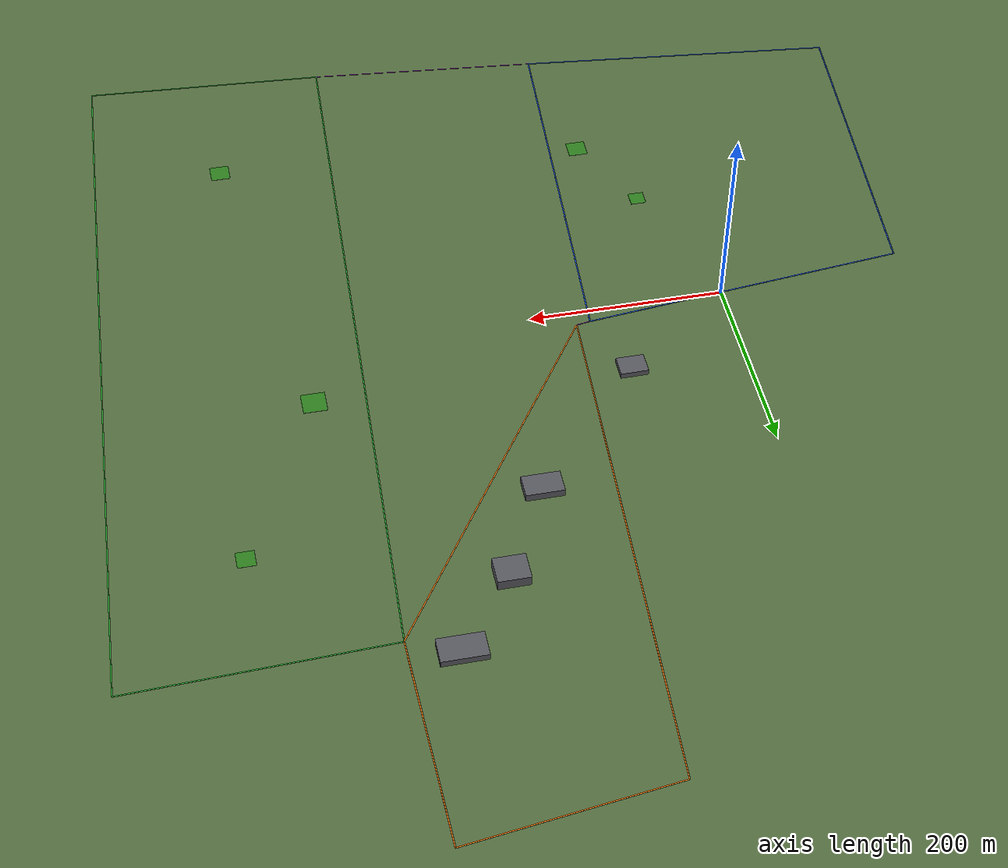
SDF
<sdf version="1.9">
 <world name="zhixin_2026_ke_mu_1_2">
  <gravity>0 0 -9.81</gravity>
  <physics name="1ms" type="ignored">
   <max_step_size>0.001</max_step_size>
   <real_time_factor>1.0</real_time_factor>
  </physics>
  <scene>
   <ambient>0.45 0.45 0.45 1</ambient>
   <background>0.70 0.78 0.88 1</background>
   <shadows>true</shadows>
  </scene>
  <light name="sun" type="directional">
   <pose>0 0 700 0.35 -0.45 0</pose>
   <diffuse>0.9 0.9 0.9 1</diffuse>
   <direction>-0.25 0.35 -0.90</direction>
  </light>
  <model name="ground">
   <static>true</static>
   <link name="link">
    <collision name="collision">
     <geometry><plane><normal>0 0 1</normal><size>1600 1400</size></plane></geometry>
    </collision>
    <visual name="visual">
     <geometry><plane><normal>0 0 1</normal><size>1600 1400</size></plane></geometry>
     <material><ambient>0.33 0.43 0.25 1</ambient><diffuse>0.33 0.43 0.25 1</diffuse></material>
    </visual>
   </link>
  </model>
  <model name="competition_boundary_0">
   <static>true</static>
   <pose>-203.105 -191.445 0.060 0 0 -1.643189</pose>
   <link name="link">
    <collision name="collision"><geometry><box><size>340.803 0.800 0.120</size></box></geometry></collision>
    <visual name="visual">
     <geometry><box><size>340.803 0.800 0.120</size></box></geometry>
     <material><ambient>0.55 0.08 0.72 1</ambient><diffuse>0.55 0.08 0.72 1</diffuse></material>
    </visual>
   </link>
  </model>
  <model name="competition_boundary_1">
   <static>true</static>
   <pose>-49.815 -379.060 0.060 0 0 -0.106231</pose>
   <link name="link">
    <collision name="collision"><geometry><box><size>333.108 0.800 0.120</size></box></geometry></collision>
    <visual name="visual">
     <geometry><box><size>333.108 0.800 0.120</size></box></geometry>
     <material><ambient>0.55 0.08 0.72 1</ambient><diffuse>0.55 0.08 0.72 1</diffuse></material>
    </visual>
   </link>
  </model>
  <model name="competition_boundary_2">
   <static>true</static>
   <pose>235.195 -408.385 0.060 0 0 -0.097392</pose>
   <link name="link">
    <collision name="collision"><geometry><box><size>239.927 0.800 0.120</size></box></geometry></collision>
    <visual name="visual">
     <geometry><box><size>239.927 0.800 0.120</size></box></geometry>
     <material><ambient>0.55 0.08 0.72 1</ambient><diffuse>0.55 0.08 0.72 1</diffuse></material>
    </visual>
   </link>
  </model>
  <model name="competition_boundary_3">
   <static>true</static>
   <pose>479.510 -428.035 0.060 0 0 -0.063834</pose>
   <link name="link">
    <collision name="collision"><geometry><box><size>250.350 0.800 0.120</size></box></geometry></collision>
    <visual name="visual">
     <geometry><box><size>250.350 0.800 0.120</size></box></geometry>
     <material><ambient>0.55 0.08 0.72 1</ambient><diffuse>0.55 0.08 0.72 1</diffuse></material>
    </visual>
   </link>
  </model>
  <model name="competition_boundary_4">
   <static>true</static>
   <pose>629.080 -28.555 0.060 0 0 1.510374</pose>
   <link name="link">
    <collision name="collision"><geometry><box><size>816.420 0.800 0.120</size></box></geometry></collision>
    <visual name="visual">
     <geometry><box><size>816.420 0.800 0.120</size></box></geometry>
     <material><ambient>0.55 0.08 0.72 1</ambient><diffuse>0.55 0.08 0.72 1</diffuse></material>
    </visual>
   </link>
  </model>
  <model name="competition_boundary_5">
   <static>true</static>
   <pose>523.805 374.300 0.060 0 0 -3.106126</pose>
   <link name="link">
    <collision name="collision"><geometry><box><size>260.014 0.800 0.120</size></box></geometry></collision>
    <visual name="visual">
     <geometry><box><size>260.014 0.800 0.120</size></box></geometry>
     <material><ambient>0.55 0.08 0.72 1</ambient><diffuse>0.55 0.08 0.72 1</diffuse></material>
    </visual>
   </link>
  </model>
  <model name="competition_boundary_6">
   <static>true</static>
   <pose>391.440 477.010 0.060 0 0 1.593528</pose>
   <link name="link">
    <collision name="collision"><geometry><box><size>214.695 0.800 0.120</size></box></geometry></collision>
    <visual name="visual">
     <geometry><box><size>214.695 0.800 0.120</size></box></geometry>
     <material><ambient>0.55 0.08 0.72 1</ambient><diffuse>0.55 0.08 0.72 1</diffuse></material>
    </visual>
   </link>
  </model>
  <model name="competition_boundary_7">
   <static>true</static>
   <pose>285.650 570.820 0.060 0 0 -3.011609</pose>
   <link name="link">
    <collision name="collision"><geometry><box><size>208.459 0.800 0.120</size></box></geometry></collision>
    <visual name="visual">
     <geometry><box><size>208.459 0.800 0.120</size></box></geometry>
     <material><ambient>0.55 0.08 0.72 1</ambient><diffuse>0.55 0.08 0.72 1</diffuse></material>
    </visual>
   </link>
  </model>
  <model name="competition_boundary_8">
   <static>true</static>
   <pose>168.695 286.790 0.060 0 0 -1.621046</pose>
   <link name="link">
    <collision name="collision"><geometry><box><size>541.724 0.800 0.120</size></box></geometry></collision>
    <visual name="visual">
     <geometry><box><size>541.724 0.800 0.120</size></box></geometry>
     <material><ambient>0.55 0.08 0.72 1</ambient><diffuse>0.55 0.08 0.72 1</diffuse></material>
    </visual>
   </link>
  </model>
  <model name="competition_boundary_9">
   <static>true</static>
   <pose>147.900 15.045 0.060 0 0 -2.972838</pose>
   <link name="link">
    <collision name="collision"><geometry><box><size>14.587 0.800 0.120</size></box></geometry></collision>
    <visual name="visual">
     <geometry><box><size>14.587 0.800 0.120</size></box></geometry>
     <material><ambient>0.55 0.08 0.72 1</ambient><diffuse>0.55 0.08 0.72 1</diffuse></material>
    </visual>
   </link>
  </model>
  <model name="competition_boundary_10">
   <static>true</static>
   <pose>-25.035 -3.835 0.060 0 0 -3.035474</pose>
   <link name="link">
    <collision name="collision"><geometry><box><size>333.365 0.800 0.120</size></box></geometry></collision>
    <visual name="visual">
     <geometry><box><size>333.365 0.800 0.120</size></box></geometry>
     <material><ambient>0.55 0.08 0.72 1</ambient><diffuse>0.55 0.08 0.72 1</diffuse></material>
    </visual>
   </link>
  </model>
  <model name="takeoff_boundary_0">
   <static>true</static>
   <pose>-203.105 -191.445 0.090 0 0 -1.643189</pose>
   <link name="link">
    <collision name="collision"><geometry><box><size>340.803 1.200 0.180</size></box></geometry></collision>
    <visual name="visual">
     <geometry><box><size>340.803 1.200 0.180</size></box></geometry>
     <material><ambient>0.10 0.35 0.90 1</ambient><diffuse>0.10 0.35 0.90 1</diffuse></material>
    </visual>
   </link>
  </model>
  <model name="takeoff_boundary_1">
   <static>true</static>
   <pose>-49.815 -379.060 0.090 0 0 -0.106231</pose>
   <link name="link">
    <collision name="collision"><geometry><box><size>333.108 1.200 0.180</size></box></geometry></collision>
    <visual name="visual">
     <geometry><box><size>333.108 1.200 0.180</size></box></geometry>
     <material><ambient>0.10 0.35 0.90 1</ambient><diffuse>0.10 0.35 0.90 1</diffuse></material>
    </visual>
   </link>
  </model>
  <model name="takeoff_boundary_2">
   <static>true</static>
   <pose>128.255 -191.450 0.090 0 0 1.510194</pose>
   <link name="link">
    <collision name="collision"><geometry><box><size>411.295 1.200 0.180</size></box></geometry></collision>
    <visual name="visual">
     <geometry><box><size>411.295 1.200 0.180</size></box></geometry>
     <material><ambient>0.10 0.35 0.90 1</ambient><diffuse>0.10 0.35 0.90 1</diffuse></material>
    </visual>
   </link>
  </model>
  <model name="takeoff_boundary_3">
   <static>true</static>
   <pose>-25.035 -3.835 0.090 0 0 -3.035474</pose>
   <link name="link">
    <collision name="collision"><geometry><box><size>333.365 1.200 0.180</size></box></geometry></collision>
    <visual name="visual">
     <geometry><box><size>333.365 1.200 0.180</size></box></geometry>
     <material><ambient>0.10 0.35 0.90 1</ambient><diffuse>0.10 0.35 0.90 1</diffuse></material>
    </visual>
   </link>
  </model>
  <model name="house_boundary_0">
   <static>true</static>
   <pose>168.695 286.790 0.090 0 0 1.520547</pose>
   <link name="link">
    <collision name="collision"><geometry><box><size>541.724 1.200 0.180</size></box></geometry></collision>
    <visual name="visual">
     <geometry><box><size>541.724 1.200 0.180</size></box></geometry>
     <material><ambient>0.90 0.45 0.05 1</ambient><diffuse>0.90 0.45 0.05 1</diffuse></material>
    </visual>
   </link>
  </model>
  <model name="house_boundary_1">
   <static>true</static>
   <pose>285.650 570.820 0.090 0 0 0.129984</pose>
   <link name="link">
    <collision name="collision"><geometry><box><size>208.459 1.200 0.180</size></box></geometry></collision>
    <visual name="visual">
     <geometry><box><size>208.459 1.200 0.180</size></box></geometry>
     <material><ambient>0.90 0.45 0.05 1</ambient><diffuse>0.90 0.45 0.05 1</diffuse></material>
    </visual>
   </link>
  </model>
  <model name="house_boundary_2">
   <static>true</static>
   <pose>391.440 477.010 0.090 0 0 -1.548064</pose>
   <link name="link">
    <collision name="collision"><geometry><box><size>214.695 1.200 0.180</size></box></geometry></collision>
    <visual name="visual">
     <geometry><box><size>214.695 1.200 0.180</size></box></geometry>
     <material><ambient>0.90 0.45 0.05 1</ambient><diffuse>0.90 0.45 0.05 1</diffuse></material>
    </visual>
   </link>
  </model>
  <model name="house_boundary_3">
   <static>true</static>
   <pose>274.485 192.980 0.090 0 0 -2.164996</pose>
   <link name="link">
    <collision name="collision"><geometry><box><size>426.528 1.200 0.180</size></box></geometry></collision>
    <visual name="visual">
     <geometry><box><size>426.528 1.200 0.180</size></box></geometry>
     <material><ambient>0.90 0.45 0.05 1</ambient><diffuse>0.90 0.45 0.05 1</diffuse></material>
    </visual>
   </link>
  </model>
  <model name="grass_boundary_0">
   <static>true</static>
   <pose>374.235 -25.180 0.090 0 0 -1.620506</pose>
   <link name="link">
    <collision name="collision"><geometry><box><size>790.717 1.200 0.180</size></box></geometry></collision>
    <visual name="visual">
     <geometry><box><size>790.717 1.200 0.180</size></box></geometry>
     <material><ambient>0.15 0.65 0.18 1</ambient><diffuse>0.15 0.65 0.18 1</diffuse></material>
    </visual>
   </link>
  </model>
  <model name="grass_boundary_1">
   <static>true</static>
   <pose>479.510 -428.035 0.090 0 0 -0.063834</pose>
   <link name="link">
    <collision name="collision"><geometry><box><size>250.350 1.200 0.180</size></box></geometry></collision>
    <visual name="visual">
     <geometry><box><size>250.350 1.200 0.180</size></box></geometry>
     <material><ambient>0.15 0.65 0.18 1</ambient><diffuse>0.15 0.65 0.18 1</diffuse></material>
    </visual>
   </link>
  </model>
  <model name="grass_boundary_2">
   <static>true</static>
   <pose>629.080 -28.555 0.090 0 0 1.510374</pose>
   <link name="link">
    <collision name="collision"><geometry><box><size>816.420 1.200 0.180</size></box></geometry></collision>
    <visual name="visual">
     <geometry><box><size>816.420 1.200 0.180</size></box></geometry>
     <material><ambient>0.15 0.65 0.18 1</ambient><diffuse>0.15 0.65 0.18 1</diffuse></material>
    </visual>
   </link>
  </model>
  <model name="grass_boundary_3">
   <static>true</static>
   <pose>523.805 374.300 0.090 0 0 -3.106126</pose>
   <link name="link">
    <collision name="collision"><geometry><box><size>260.014 1.200 0.180</size></box></geometry></collision>
    <visual name="visual">
     <geometry><box><size>260.014 1.200 0.180</size></box></geometry>
     <material><ambient>0.15 0.65 0.18 1</ambient><diffuse>0.15 0.65 0.18 1</diffuse></material>
    </visual>
   </link>
  </model>
  <model name="house_obstacle_0">
   <static>true</static>
   <pose>235.000 220.000 4.000 0 0 0</pose>
   <link name="link">
    <collision name="collision"><geometry><box><size>38.000 24.000 8.000</size></box></geometry></collision>
    <visual name="visual">
     <geometry><box><size>38.000 24.000 8.000</size></box></geometry>
     <material><ambient>0.35 0.35 0.38 1</ambient><diffuse>0.35 0.35 0.38 1</diffuse></material>
    </visual>
   </link>
  </model>
  <model name="house_obstacle_1">
   <static>true</static>
   <pose>285.000 315.000 5.500 0 0 0</pose>
   <link name="link">
    <collision name="collision"><geometry><box><size>32.000 28.000 11.000</size></box></geometry></collision>
    <visual name="visual">
     <geometry><box><size>32.000 28.000 11.000</size></box></geometry>
     <material><ambient>0.35 0.35 0.38 1</ambient><diffuse>0.35 0.35 0.38 1</diffuse></material>
    </visual>
   </link>
  </model>
  <model name="house_obstacle_2">
   <static>true</static>
   <pose>345.000 390.000 3.500 0 0 0</pose>
   <link name="link">
    <collision name="collision"><geometry><box><size>45.000 26.000 7.000</size></box></geometry></collision>
    <visual name="visual">
     <geometry><box><size>45.000 26.000 7.000</size></box></geometry>
     <material><ambient>0.35 0.35 0.38 1</ambient><diffuse>0.35 0.35 0.38 1</diffuse></material>
    </visual>
   </link>
  </model>
  <model name="house_obstacle_3">
   <static>true</static>
   <pose>115.000 85.000 3.000 0 0 0</pose>
   <link name="link">
    <collision name="collision"><geometry><box><size>28.000 22.000 6.000</size></box></geometry></collision>
    <visual name="visual">
     <geometry><box><size>28.000 22.000 6.000</size></box></geometry>
     <material><ambient>0.35 0.35 0.38 1</ambient><diffuse>0.35 0.35 0.38 1</diffuse></material>
    </visual>
   </link>
  </model>
  <model name="grass_patch_0">
   <static>true</static>
   <pose>50.000 -155.000 0.060 0 0 0</pose>
   <link name="link">
    <collision name="collision"><geometry><box><size>16.000 16.000 0.120</size></box></geometry></collision>
    <visual name="visual">
     <geometry><box><size>16.000 16.000 0.120</size></box></geometry>
     <material><ambient>0.18 0.50 0.12 1</ambient><diffuse>0.18 0.50 0.12 1</diffuse></material>
    </visual>
   </link>
  </model>
  <model name="grass_patch_1">
   <static>true</static>
   <pose>95.000 -245.000 0.060 0 0 0</pose>
   <link name="link">
    <collision name="collision"><geometry><box><size>20.000 20.000 0.120</size></box></geometry></collision>
    <visual name="visual">
     <geometry><box><size>20.000 20.000 0.120</size></box></geometry>
     <material><ambient>0.18 0.50 0.12 1</ambient><diffuse>0.18 0.50 0.12 1</diffuse></material>
    </visual>
   </link>
  </model>
  <model name="grass_patch_2">
   <static>true</static>
   <pose>430.000 70.000 0.060 0 0 0</pose>
   <link name="link">
    <collision name="collision"><geometry><box><size>24.000 24.000 0.120</size></box></geometry></collision>
    <visual name="visual">
     <geometry><box><size>24.000 24.000 0.120</size></box></geometry>
     <material><ambient>0.18 0.50 0.12 1</ambient><diffuse>0.18 0.50 0.12 1</diffuse></material>
    </visual>
   </link>
  </model>
  <model name="grass_patch_3">
   <static>true</static>
   <pose>520.000 250.000 0.060 0 0 0</pose>
   <link name="link">
    <collision name="collision"><geometry><box><size>18.000 18.000 0.120</size></box></geometry></collision>
    <visual name="visual">
     <geometry><box><size>18.000 18.000 0.120</size></box></geometry>
     <material><ambient>0.18 0.50 0.12 1</ambient><diffuse>0.18 0.50 0.12 1</diffuse></material>
    </visual>
   </link>
  </model>
  <model name="grass_patch_4">
   <static>true</static>
   <pose>480.000 -280.000 0.060 0 0 0</pose>
   <link name="link">
    <collision name="collision"><geometry><box><size>20.000 20.000 0.120</size></box></geometry></collision>
    <visual name="visual">
     <geometry><box><size>20.000 20.000 0.120</size></box></geometry>
     <material><ambient>0.18 0.50 0.12 1</ambient><diffuse>0.18 0.50 0.12 1</diffuse></material>
    </visual>
   </link>
  </model>
 </world>
</sdf>
